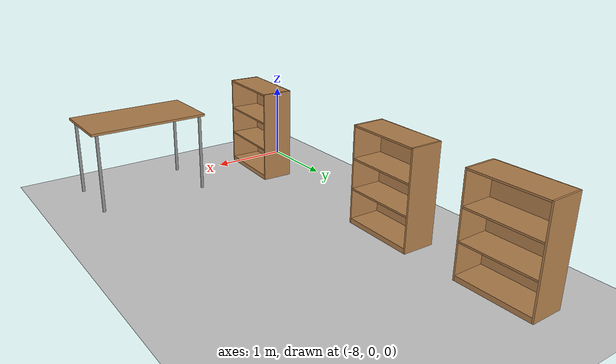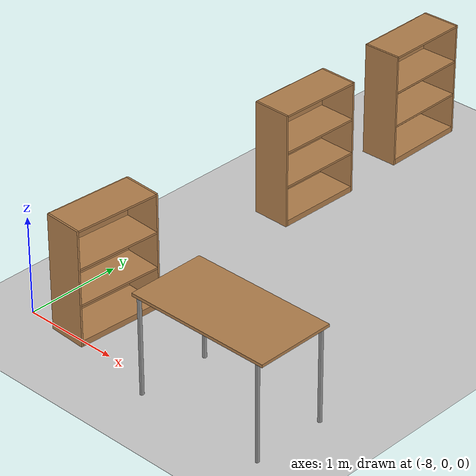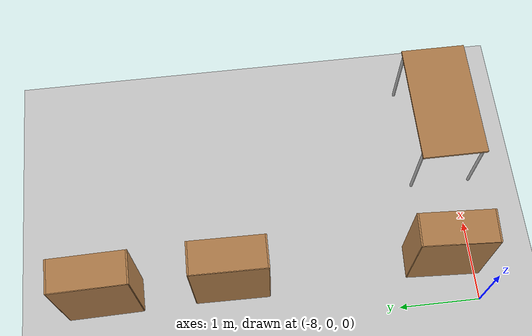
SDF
<sdf version="1.7">
 <world name="default">
  <model name="ground_plane">
   <static>1</static>
   <link name="link">
    <collision name="collision">
     <geometry><plane><normal>0 0 1</normal><size>100 100</size></plane></geometry>
     <surface>
      <contact><collide_bitmask>65535</collide_bitmask></contact>
      <friction><ode><mu>100</mu><mu2>50</mu2></ode></friction>
     </surface>
    </collision>
    <visual name="visual">
     <cast_shadows>0</cast_shadows>
     <geometry><plane><normal>0 0 1</normal><size>100 100</size></plane></geometry>
     <material>
      <script><uri>file://media/materials/scripts/gazebo.material</uri><name>Gazebo/Grey</name></script>
     </material>
    </visual>
   </link>
  </model>
  <model name="table_3">
   <static>1</static>
   <link name="link">
    <collision name="surface">
     <pose>0 0 1 0 -0 0</pose>
     <geometry><box><size>1.5 0.8 0.03</size></box></geometry>
     <surface><friction><ode><mu>0.6</mu><mu2>0.6</mu2></ode></friction></surface>
    </collision>
    <visual name="visual1">
     <pose>0 0 1 0 -0 0</pose>
     <geometry><box><size>1.5 0.8 0.03</size></box></geometry>
     <material>
      <script><uri>file://media/materials/scripts/gazebo.material</uri><name>Gazebo/Wood</name></script>
     </material>
    </visual>
    <collision name="front_left_leg">
     <pose>0.68 0.38 0.5 0 -0 0</pose>
     <geometry><cylinder><radius>0.02</radius><length>1</length></cylinder></geometry>
    </collision>
    <visual name="front_left_leg">
     <pose>0.68 0.38 0.5 0 -0 0</pose>
     <geometry><cylinder><radius>0.02</radius><length>1</length></cylinder></geometry>
     <material>
      <script><uri>file://media/materials/scripts/gazebo.material</uri><name>Gazebo/Grey</name></script>
     </material>
    </visual>
    <collision name="front_right_leg">
     <pose>0.68 -0.38 0.5 0 -0 0</pose>
     <geometry><cylinder><radius>0.02</radius><length>1</length></cylinder></geometry>
    </collision>
    <visual name="front_right_leg">
     <pose>0.68 -0.38 0.5 0 -0 0</pose>
     <geometry><cylinder><radius>0.02</radius><length>1</length></cylinder></geometry>
     <material>
      <script><uri>file://media/materials/scripts/gazebo.material</uri><name>Gazebo/Grey</name></script>
     </material>
    </visual>
    <collision name="back_right_leg">
     <pose>-0.68 -0.38 0.5 0 -0 0</pose>
     <geometry><cylinder><radius>0.02</radius><length>1</length></cylinder></geometry>
    </collision>
    <visual name="back_right_leg">
     <pose>-0.68 -0.38 0.5 0 -0 0</pose>
     <geometry><cylinder><radius>0.02</radius><length>1</length></cylinder></geometry>
     <material>
      <script><uri>file://media/materials/scripts/gazebo.material</uri><name>Gazebo/Grey</name></script>
     </material>
    </visual>
    <collision name="back_left_leg">
     <pose>-0.68 0.38 0.5 0 -0 0</pose>
     <geometry><cylinder><radius>0.02</radius><length>1</length></cylinder></geometry>
    </collision>
    <visual name="back_left_leg">
     <pose>-0.68 0.38 0.5 0 -0 0</pose>
     <geometry><cylinder><radius>0.02</radius><length>1</length></cylinder></geometry>
     <material>
      <script><uri>file://media/materials/scripts/gazebo.material</uri><name>Gazebo/Grey</name></script>
     </material>
    </visual>
   </link>
   <pose>-5.71788 0.191235 0 0 -0 0</pose>
  </model>
  <model name="bookshelf_0">
   <static>1</static>
   <link name="link">
    <inertial><mass>1</mass></inertial>
    <collision name="back">
     <pose>0 0.005 0.6 0 -0 0</pose>
     <geometry><box><size>0.9 0.01 1.2</size></box></geometry>
    </collision>
    <visual name="visual1">
     <pose>0 0.005 0.6 0 -0 0</pose>
     <geometry><box><size>0.9 0.01 1.2</size></box></geometry>
     <material>
      <script><uri>file://media/materials/scripts/gazebo.material</uri><name>Gazebo/Wood</name></script>
     </material>
    </visual>
    <collision name="left_side">
     <pose>0.45 -0.195 0.6 0 -0 0</pose>
     <geometry><box><size>0.02 0.4 1.2</size></box></geometry>
    </collision>
    <visual name="visual2">
     <pose>0.45 -0.195 0.6 0 -0 0</pose>
     <geometry><box><size>0.02 0.4 1.2</size></box></geometry>
     <material>
      <script><uri>file://media/materials/scripts/gazebo.material</uri><name>Gazebo/Wood</name></script>
     </material>
    </visual>
    <collision name="right_side">
     <pose>-0.45 -0.195 0.6 0 -0 0</pose>
     <geometry><box><size>0.02 0.4 1.2</size></box></geometry>
    </collision>
    <visual name="visual3">
     <pose>-0.45 -0.195 0.6 0 -0 0</pose>
     <geometry><box><size>0.02 0.4 1.2</size></box></geometry>
     <material>
      <script><uri>file://media/materials/scripts/gazebo.material</uri><name>Gazebo/Wood</name></script>
     </material>
    </visual>
    <collision name="bottom">
     <pose>0 -0.195 0.03 0 -0 0</pose>
     <geometry><box><size>0.88 0.4 0.06</size></box></geometry>
    </collision>
    <visual name="visual4">
     <pose>0 -0.195 0.03 0 -0 0</pose>
     <geometry><box><size>0.88 0.4 0.06</size></box></geometry>
     <material>
      <script><uri>file://media/materials/scripts/gazebo.material</uri><name>Gazebo/Wood</name></script>
     </material>
    </visual>
    <collision name="top">
     <pose>0 -0.195 1.19 0 -0 0</pose>
     <geometry><box><size>0.88 0.4 0.02</size></box></geometry>
    </collision>
    <visual name="visual5">
     <pose>0 -0.195 1.19 0 -0 0</pose>
     <geometry><box><size>0.88 0.4 0.02</size></box></geometry>
     <material>
      <script><uri>file://media/materials/scripts/gazebo.material</uri><name>Gazebo/Wood</name></script>
     </material>
    </visual>
    <collision name="low_shelf">
     <pose>0 -0.195 0.43 0 -0 0</pose>
     <geometry><box><size>0.88 0.4 0.02</size></box></geometry>
    </collision>
    <visual name="visual6">
     <pose>0 -0.195 0.43 0 -0 0</pose>
     <geometry><box><size>0.88 0.4 0.02</size></box></geometry>
     <material>
      <script><uri>file://media/materials/scripts/gazebo.material</uri><name>Gazebo/Wood</name></script>
     </material>
    </visual>
    <collision name="high_shelf">
     <pose>0 -0.195 0.8 0 -0 0</pose>
     <geometry><box><size>0.88 0.4 0.02</size></box></geometry>
    </collision>
    <visual name="visual7">
     <pose>0 -0.195 0.8 0 -0 0</pose>
     <geometry><box><size>0.88 0.4 0.02</size></box></geometry>
     <material>
      <script><uri>file://media/materials/scripts/gazebo.material</uri><name>Gazebo/Wood</name></script>
     </material>
    </visual>
   </link>
   <pose>-7.69628 4.58203 0.055196 0 -0 1.58722</pose>
  </model>
  <model name="bookshelf_1">
   <static>1</static>
   <link name="link">
    <inertial><mass>1</mass></inertial>
    <collision name="back">
     <pose>0 0.005 0.6 0 -0 0</pose>
     <geometry><box><size>0.9 0.01 1.2</size></box></geometry>
    </collision>
    <visual name="visual1">
     <pose>0 0.005 0.6 0 -0 0</pose>
     <geometry><box><size>0.9 0.01 1.2</size></box></geometry>
     <material>
      <script><uri>file://media/materials/scripts/gazebo.material</uri><name>Gazebo/Wood</name></script>
     </material>
    </visual>
    <collision name="left_side">
     <pose>0.45 -0.195 0.6 0 -0 0</pose>
     <geometry><box><size>0.02 0.4 1.2</size></box></geometry>
    </collision>
    <visual name="visual2">
     <pose>0.45 -0.195 0.6 0 -0 0</pose>
     <geometry><box><size>0.02 0.4 1.2</size></box></geometry>
     <material>
      <script><uri>file://media/materials/scripts/gazebo.material</uri><name>Gazebo/Wood</name></script>
     </material>
    </visual>
    <collision name="right_side">
     <pose>-0.45 -0.195 0.6 0 -0 0</pose>
     <geometry><box><size>0.02 0.4 1.2</size></box></geometry>
    </collision>
    <visual name="visual3">
     <pose>-0.45 -0.195 0.6 0 -0 0</pose>
     <geometry><box><size>0.02 0.4 1.2</size></box></geometry>
     <material>
      <script><uri>file://media/materials/scripts/gazebo.material</uri><name>Gazebo/Wood</name></script>
     </material>
    </visual>
    <collision name="bottom">
     <pose>0 -0.195 0.03 0 -0 0</pose>
     <geometry><box><size>0.88 0.4 0.06</size></box></geometry>
    </collision>
    <visual name="visual4">
     <pose>0 -0.195 0.03 0 -0 0</pose>
     <geometry><box><size>0.88 0.4 0.06</size></box></geometry>
     <material>
      <script><uri>file://media/materials/scripts/gazebo.material</uri><name>Gazebo/Wood</name></script>
     </material>
    </visual>
    <collision name="top">
     <pose>0 -0.195 1.19 0 -0 0</pose>
     <geometry><box><size>0.88 0.4 0.02</size></box></geometry>
    </collision>
    <visual name="visual5">
     <pose>0 -0.195 1.19 0 -0 0</pose>
     <geometry><box><size>0.88 0.4 0.02</size></box></geometry>
     <material>
      <script><uri>file://media/materials/scripts/gazebo.material</uri><name>Gazebo/Wood</name></script>
     </material>
    </visual>
    <collision name="low_shelf">
     <pose>0 -0.195 0.43 0 -0 0</pose>
     <geometry><box><size>0.88 0.4 0.02</size></box></geometry>
    </collision>
    <visual name="visual6">
     <pose>0 -0.195 0.43 0 -0 0</pose>
     <geometry><box><size>0.88 0.4 0.02</size></box></geometry>
     <material>
      <script><uri>file://media/materials/scripts/gazebo.material</uri><name>Gazebo/Wood</name></script>
     </material>
    </visual>
    <collision name="high_shelf">
     <pose>0 -0.195 0.8 0 -0 0</pose>
     <geometry><box><size>0.88 0.4 0.02</size></box></geometry>
    </collision>
    <visual name="visual7">
     <pose>0 -0.195 0.8 0 -0 0</pose>
     <geometry><box><size>0.88 0.4 0.02</size></box></geometry>
     <material>
      <script><uri>file://media/materials/scripts/gazebo.material</uri><name>Gazebo/Wood</name></script>
     </material>
    </visual>
   </link>
   <pose>-7.67391 3.03031 0.049959 0 -0 1.55456</pose>
  </model>
  <model name="bookshelf_2">
   <static>1</static>
   <link name="link">
    <inertial><mass>1</mass></inertial>
    <collision name="back">
     <pose>0 0.005 0.6 0 -0 0</pose>
     <geometry><box><size>0.9 0.01 1.2</size></box></geometry>
    </collision>
    <visual name="visual1">
     <pose>0 0.005 0.6 0 -0 0</pose>
     <geometry><box><size>0.9 0.01 1.2</size></box></geometry>
     <material>
      <script><uri>file://media/materials/scripts/gazebo.material</uri><name>Gazebo/Wood</name></script>
     </material>
    </visual>
    <collision name="left_side">
     <pose>0.45 -0.195 0.6 0 -0 0</pose>
     <geometry><box><size>0.02 0.4 1.2</size></box></geometry>
    </collision>
    <visual name="visual2">
     <pose>0.45 -0.195 0.6 0 -0 0</pose>
     <geometry><box><size>0.02 0.4 1.2</size></box></geometry>
     <material>
      <script><uri>file://media/materials/scripts/gazebo.material</uri><name>Gazebo/Wood</name></script>
     </material>
    </visual>
    <collision name="right_side">
     <pose>-0.45 -0.195 0.6 0 -0 0</pose>
     <geometry><box><size>0.02 0.4 1.2</size></box></geometry>
    </collision>
    <visual name="visual3">
     <pose>-0.45 -0.195 0.6 0 -0 0</pose>
     <geometry><box><size>0.02 0.4 1.2</size></box></geometry>
     <material>
      <script><uri>file://media/materials/scripts/gazebo.material</uri><name>Gazebo/Wood</name></script>
     </material>
    </visual>
    <collision name="bottom">
     <pose>0 -0.195 0.03 0 -0 0</pose>
     <geometry><box><size>0.88 0.4 0.06</size></box></geometry>
    </collision>
    <visual name="visual4">
     <pose>0 -0.195 0.03 0 -0 0</pose>
     <geometry><box><size>0.88 0.4 0.06</size></box></geometry>
     <material>
      <script><uri>file://media/materials/scripts/gazebo.material</uri><name>Gazebo/Wood</name></script>
     </material>
    </visual>
    <collision name="top">
     <pose>0 -0.195 1.19 0 -0 0</pose>
     <geometry><box><size>0.88 0.4 0.02</size></box></geometry>
    </collision>
    <visual name="visual5">
     <pose>0 -0.195 1.19 0 -0 0</pose>
     <geometry><box><size>0.88 0.4 0.02</size></box></geometry>
     <material>
      <script><uri>file://media/materials/scripts/gazebo.material</uri><name>Gazebo/Wood</name></script>
     </material>
    </visual>
    <collision name="low_shelf">
     <pose>0 -0.195 0.43 0 -0 0</pose>
     <geometry><box><size>0.88 0.4 0.02</size></box></geometry>
    </collision>
    <visual name="visual6">
     <pose>0 -0.195 0.43 0 -0 0</pose>
     <geometry><box><size>0.88 0.4 0.02</size></box></geometry>
     <material>
      <script><uri>file://media/materials/scripts/gazebo.material</uri><name>Gazebo/Wood</name></script>
     </material>
    </visual>
    <collision name="high_shelf">
     <pose>0 -0.195 0.8 0 -0 0</pose>
     <geometry><box><size>0.88 0.4 0.02</size></box></geometry>
    </collision>
    <visual name="visual7">
     <pose>0 -0.195 0.8 0 -0 0</pose>
     <geometry><box><size>0.88 0.4 0.02</size></box></geometry>
     <material>
      <script><uri>file://media/materials/scripts/gazebo.material</uri><name>Gazebo/Wood</name></script>
     </material>
    </visual>
   </link>
   <pose>-7.64342 0.401273 0.007603 0.003018 0.000979 1.5176</pose>
  </model>
 </world>
</sdf>
